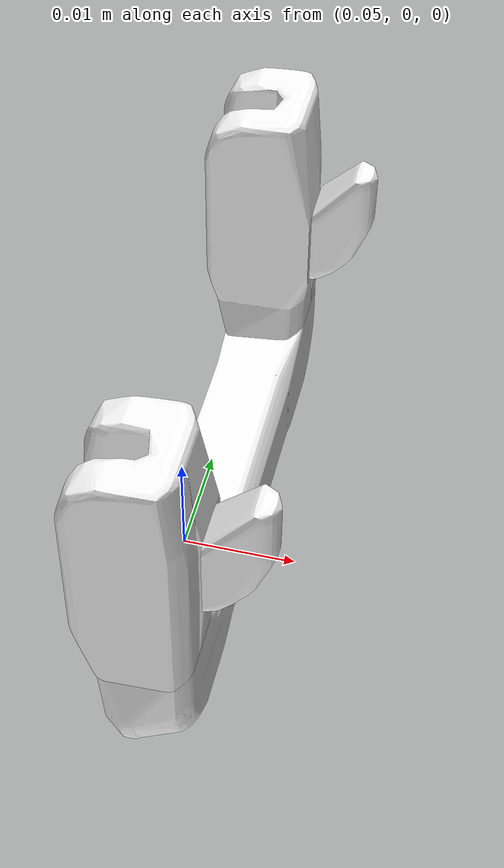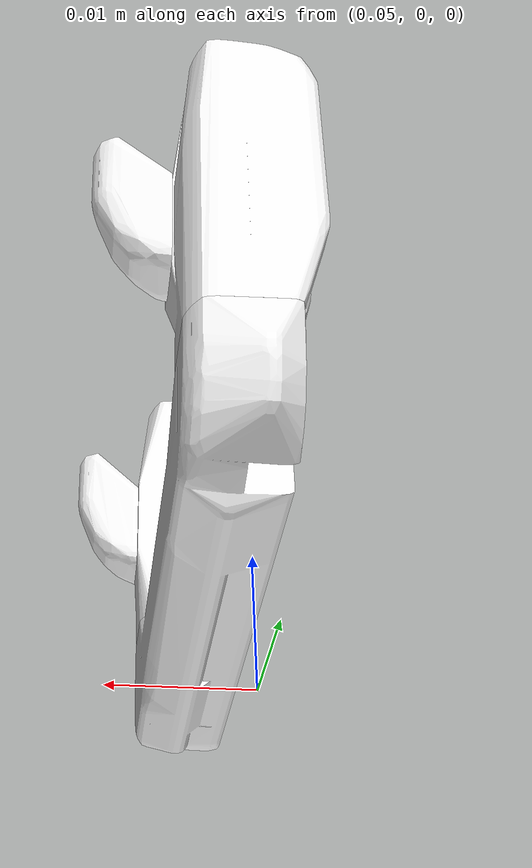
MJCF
<mujoco model="fork">
  <!-- Convex decomposition of Cozmo fork lift for accurate physics sim -->

  <compiler angle="radian" meshdir="../assets/meshes" autolimits="true"/>

  <asset>
    <material name="fork_mat" rgba="0.96 0.96 0.96 1" specular="0.3" shininess="0.4"/>
    <mesh name="fork_bottom" content_type="model/obj" file="fork/fork_bottom.obj" scale="0.01 0.01 0.01"/>
    <mesh name="fork_left" content_type="model/obj" file="fork/fork_left.obj" scale="0.01 0.01 0.01"/>
    <mesh name="fork_right" content_type="model/obj" file="fork/fork_right.obj" scale="0.01 0.01 0.01"/>
    <mesh name="tine_left" content_type="model/obj" file="fork/tine_left.obj" scale="0.01 0.01 0.01"/>
    <mesh name="tine_right" content_type="model/obj" file="fork/tine_right.obj" scale="0.01 0.01 0.01"/>
  </asset>

  <worldbody>
    <body name="fork" pos="0 0 0">
      <joint name="right_lower_pivot" pos="0.0515 -0.0192 0.0182" axis="0 -1 0" armature="0.0005" damping="0.02"/>

      <inertial pos="0.053754 0.000109 0.015779" mass="0.009"
                fullinertia="3.285023e-06 7.675117e-07 2.617684e-06 1.932247e-11 4.205440e-09 -7.205558e-12"/>

      <!-- Collision -->
      <geom name="fork_bottom" type="mesh" mesh="fork_bottom" material="fork_mat" mass="0"
            contype="2" conaffinity="1" friction="1.0 0.005 0.0001"/>
      <geom name="fork_left" type="mesh" mesh="fork_left" material="fork_mat" mass="0"
            contype="2" conaffinity="1" friction="1.0 0.005 0.0001"/>
      <geom name="fork_right" type="mesh" mesh="fork_right" material="fork_mat" mass="0"
            contype="2" conaffinity="1" friction="1.0 0.005 0.0001"/>
      <geom name="tine_left" type="mesh" mesh="tine_left" material="fork_mat" mass="0" pos="0 0.0008 0"
            contype="2" conaffinity="1" friction="1.0 0.005 0.0001"/>
      <geom name="tine_right" type="mesh" mesh="tine_right" material="fork_mat" mass="0" pos="0 -0.0008 0"
            contype="2" conaffinity="1" friction="1.0 0.005 0.0001"/>
    </body>
  </worldbody>
</mujoco>
